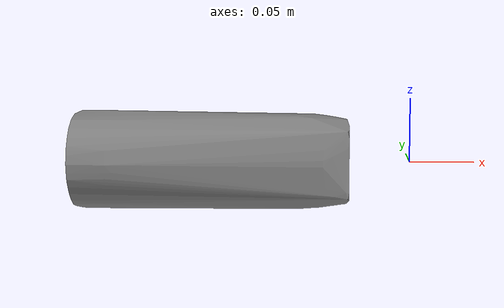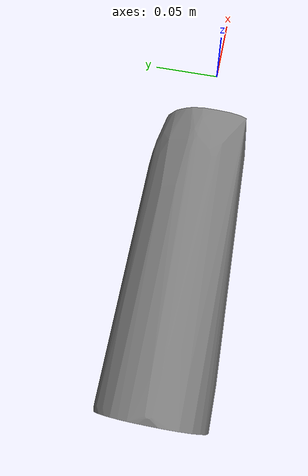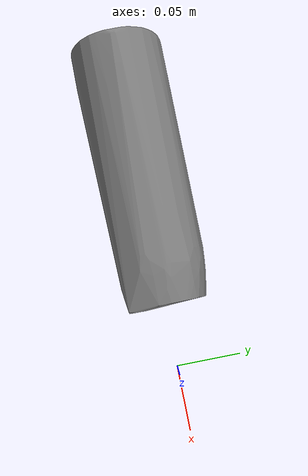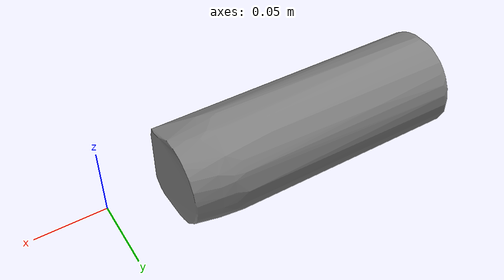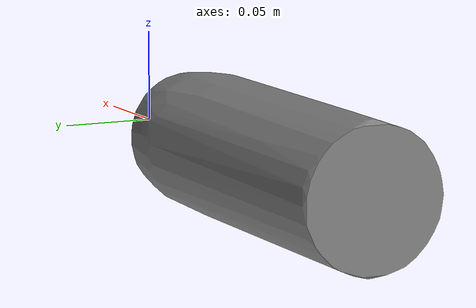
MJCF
<mujoco model="arm_link_el1_main">
  <default>
    <default class="visual">
      <geom group="2" type="mesh" contype="0" conaffinity="0"/>
    </default>
    <default class="collision">
      <geom group="3" type="mesh"/>
    </default>
  </default>
  <asset>
    <mesh file="arm_link_el1_main.obj"/>
    <mesh file="arm_link_el1_main_collision_0.obj"/>
  </asset>
  <worldbody>
    <body name="arm_link_el1_main">
      <geom mesh="arm_link_el1_main" class="visual"/>
      <geom mesh="arm_link_el1_main_collision_0" rgba="0.22416244919374928 0.7092373759222061 0.6977973919975896 1" class="collision"/>
    </body>
  </worldbody>
</mujoco>
